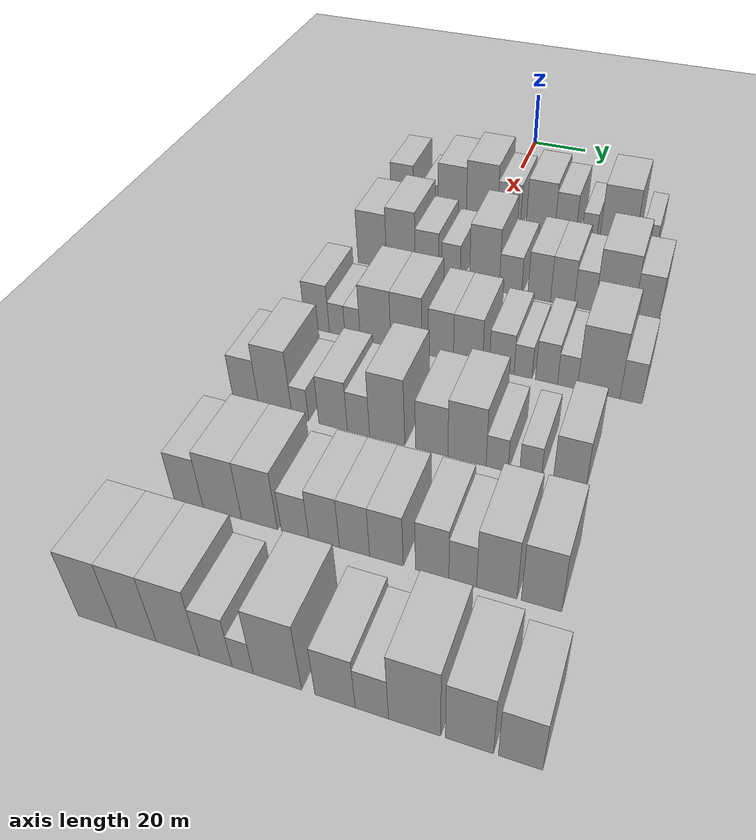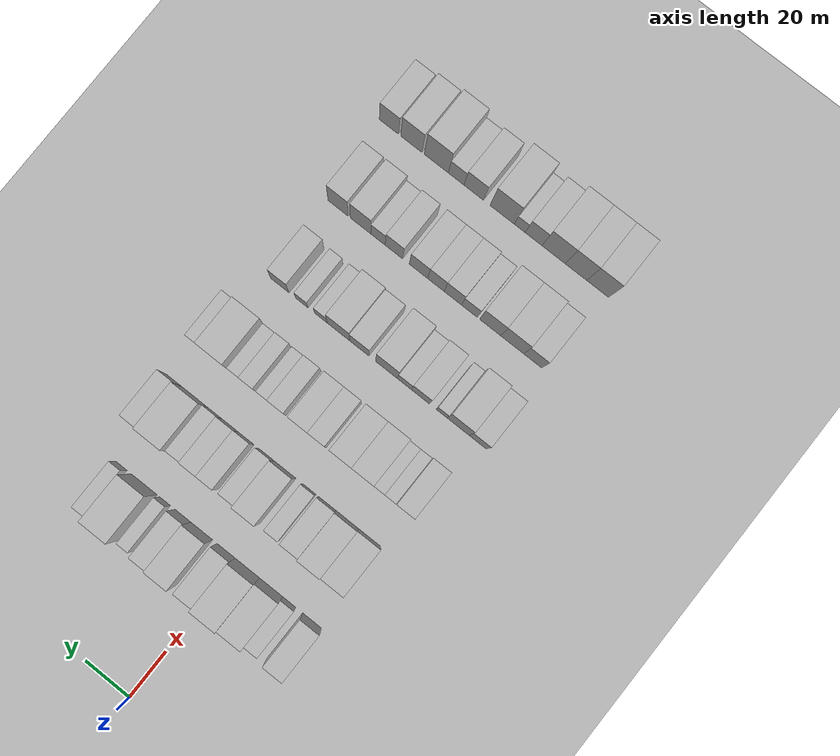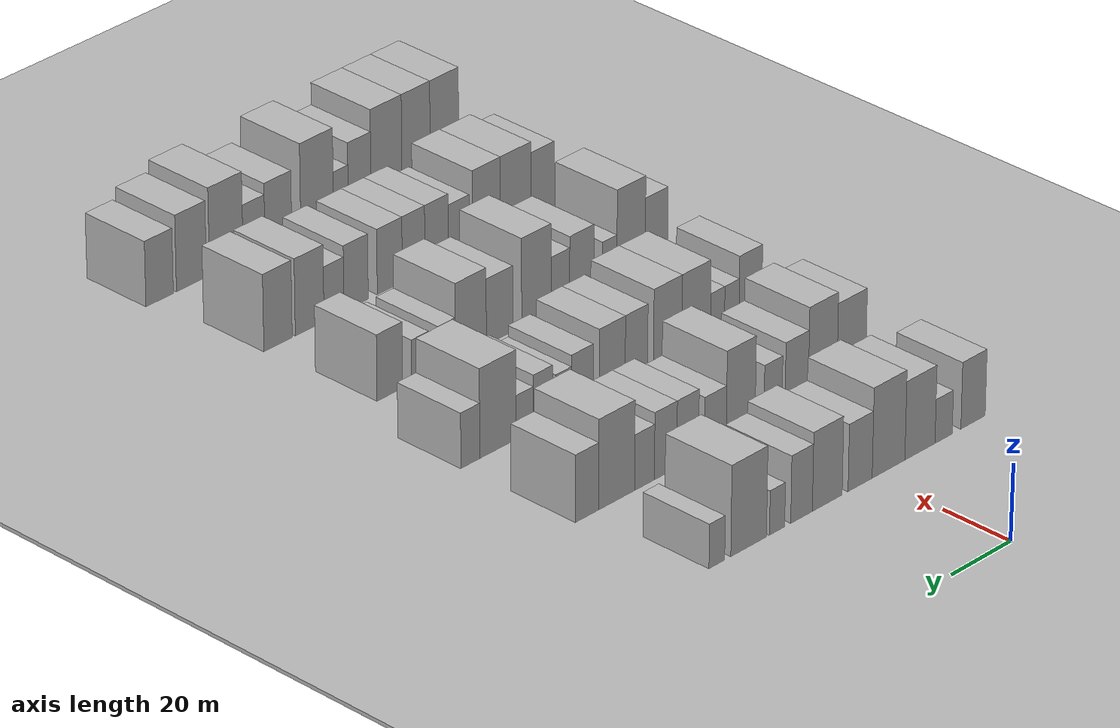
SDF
<sdf version="1.6">
 <world name="default">
  <include><name>ground_plane_1</name><uri>model://HANNAS_ground_plane</uri></include>
  <include>
   <name>ground_plane_2</name>
   <uri>model://HANNAS_ground_plane</uri>
   <pose>100 0 0  0 0 0</pose>
  </include>
  <model name="building_50">
   <static>1</static>
   <pose>50.0000 -33.1068 0 0.000000 0.000000 0.000000</pose>
   <link name="link">
    <pose>0 0 9.00 0 0 0</pose>
    <collision name="collision"><geometry><box><size>20.0000 8.4197 18.0000</size></box></geometry></collision>
    <visual name="visual">
     <cast_shadows>0</cast_shadows>
     <geometry><box><size>20.0000 8.4197 18.0000</size></box></geometry>
     <material>
      <script>
       <uri>model://HANNAS_wall/materials/scripts</uri>
       <uri>model://HANNAS_wall/materials/textures</uri>
       <name>vrc/HANNAS_wall</name>
      </script>
     </material>
    </visual>
   </link>
  </model>
  <model name="building_51">
   <static>1</static>
   <pose>50.0000 -22.9282 0 0.000000 0.000000 0.000000</pose>
   <link name="link">
    <pose>0 0 6.00 0 0 0</pose>
    <collision name="collision"><geometry><box><size>20.0000 5.9374 12.0000</size></box></geometry></collision>
    <visual name="visual">
     <cast_shadows>0</cast_shadows>
     <geometry><box><size>20.0000 5.9374 12.0000</size></box></geometry>
     <material>
      <script>
       <uri>model://HANNAS_wall/materials/scripts</uri>
       <uri>model://HANNAS_wall/materials/textures</uri>
       <name>vrc/HANNAS_wall</name>
      </script>
     </material>
    </visual>
   </link>
  </model>
  <model name="building_52">
   <static>1</static>
   <pose>50.0000 -14.8010 0 0.000000 0.000000 0.000000</pose>
   <link name="link">
    <pose>0 0 10.50 0 0 0</pose>
    <collision name="collision"><geometry><box><size>20.0000 10.3171 21.0000</size></box></geometry></collision>
    <visual name="visual">
     <cast_shadows>0</cast_shadows>
     <geometry><box><size>20.0000 10.3171 21.0000</size></box></geometry>
     <material>
      <script>
       <uri>model://HANNAS_wall/materials/scripts</uri>
       <uri>model://HANNAS_wall/materials/textures</uri>
       <name>vrc/HANNAS_wall</name>
      </script>
     </material>
    </visual>
   </link>
  </model>
  <model name="building_53">
   <static>1</static>
   <pose>50.0000 -4.0733 0 0.000000 0.000000 0.000000</pose>
   <link name="link">
    <pose>0 0 12.00 0 0 0</pose>
    <collision name="collision"><geometry><box><size>20.0000 11.1382 24.0000</size></box></geometry></collision>
    <visual name="visual">
     <cast_shadows>0</cast_shadows>
     <geometry><box><size>20.0000 11.1382 24.0000</size></box></geometry>
     <material>
      <script>
       <uri>model://HANNAS_wall/materials/scripts</uri>
       <uri>model://HANNAS_wall/materials/textures</uri>
       <name>vrc/HANNAS_wall</name>
      </script>
     </material>
    </visual>
   </link>
  </model>
  <model name="building_54">
   <static>1</static>
   <pose>50.0000 5.5672 0 0.000000 0.000000 0.000000</pose>
   <link name="link">
    <pose>0 0 9.00 0 0 0</pose>
    <collision name="collision"><geometry><box><size>20.0000 8.1429 18.0000</size></box></geometry></collision>
    <visual name="visual">
     <cast_shadows>0</cast_shadows>
     <geometry><box><size>20.0000 8.1429 18.0000</size></box></geometry>
     <material>
      <script>
       <uri>model://HANNAS_wall/materials/scripts</uri>
       <uri>model://HANNAS_wall/materials/textures</uri>
       <name>vrc/HANNAS_wall</name>
      </script>
     </material>
    </visual>
   </link>
  </model>
  <model name="building_55">
   <static>1</static>
   <pose>50.0000 16.6256 0 0.000000 0.000000 0.000000</pose>
   <link name="link">
    <pose>0 0 10.50 0 0 0</pose>
    <collision name="collision"><geometry><box><size>20.0000 9.9738 21.0000</size></box></geometry></collision>
    <visual name="visual">
     <cast_shadows>0</cast_shadows>
     <geometry><box><size>20.0000 9.9738 21.0000</size></box></geometry>
     <material>
      <script>
       <uri>model://HANNAS_wall/materials/scripts</uri>
       <uri>model://HANNAS_wall/materials/textures</uri>
       <name>vrc/HANNAS_wall</name>
      </script>
     </material>
    </visual>
   </link>
  </model>
  <model name="building_56">
   <static>1</static>
   <pose>50.0000 25.2198 0 0.000000 0.000000 0.000000</pose>
   <link name="link">
    <pose>0 0 9.00 0 0 0</pose>
    <collision name="collision"><geometry><box><size>20.0000 7.2147 18.0000</size></box></geometry></collision>
    <visual name="visual">
     <cast_shadows>0</cast_shadows>
     <geometry><box><size>20.0000 7.2147 18.0000</size></box></geometry>
     <material>
      <script>
       <uri>model://HANNAS_wall/materials/scripts</uri>
       <uri>model://HANNAS_wall/materials/textures</uri>
       <name>vrc/HANNAS_wall</name>
      </script>
     </material>
    </visual>
   </link>
  </model>
  <model name="building_57">
   <static>1</static>
   <pose>50.0000 33.3422 0 0.000000 0.000000 0.000000</pose>
   <link name="link">
    <pose>0 0 6.00 0 0 0</pose>
    <collision name="collision"><geometry><box><size>20.0000 5.0302 12.0000</size></box></geometry></collision>
    <visual name="visual">
     <cast_shadows>0</cast_shadows>
     <geometry><box><size>20.0000 5.0302 12.0000</size></box></geometry>
     <material>
      <script>
       <uri>model://HANNAS_wall/materials/scripts</uri>
       <uri>model://HANNAS_wall/materials/textures</uri>
       <name>vrc/HANNAS_wall</name>
      </script>
     </material>
    </visual>
   </link>
  </model>
  <model name="building_58">
   <static>1</static>
   <pose>50.0000 42.7394 0 0.000000 0.000000 0.000000</pose>
   <link name="link">
    <pose>0 0 12.00 0 0 0</pose>
    <collision name="collision"><geometry><box><size>20.0000 11.7641 24.0000</size></box></geometry></collision>
    <visual name="visual">
     <cast_shadows>0</cast_shadows>
     <geometry><box><size>20.0000 11.7641 24.0000</size></box></geometry>
     <material>
      <script>
       <uri>model://HANNAS_wall/materials/scripts</uri>
       <uri>model://HANNAS_wall/materials/textures</uri>
       <name>vrc/HANNAS_wall</name>
      </script>
     </material>
    </visual>
   </link>
  </model>
  <model name="building_59">
   <static>1</static>
   <pose>50.0000 53.1922 0 0.000000 0.000000 0.000000</pose>
   <link name="link">
    <pose>0 0 6.00 0 0 0</pose>
    <collision name="collision"><geometry><box><size>20.0000 5.1414 12.0000</size></box></geometry></collision>
    <visual name="visual">
     <cast_shadows>0</cast_shadows>
     <geometry><box><size>20.0000 5.1414 12.0000</size></box></geometry>
     <material>
      <script>
       <uri>model://HANNAS_wall/materials/scripts</uri>
       <uri>model://HANNAS_wall/materials/textures</uri>
       <name>vrc/HANNAS_wall</name>
      </script>
     </material>
    </visual>
   </link>
  </model>
  <model name="building_175">
   <static>1</static>
   <pose>85.0000 -30.6315 0 0.000000 0.000000 0.000000</pose>
   <link name="link">
    <pose>0 0 10.50 0 0 0</pose>
    <collision name="collision"><geometry><box><size>20.0000 9.9771 21.0000</size></box></geometry></collision>
    <visual name="visual">
     <cast_shadows>0</cast_shadows>
     <geometry><box><size>20.0000 9.9771 21.0000</size></box></geometry>
     <material>
      <script>
       <uri>model://HANNAS_wall/materials/scripts</uri>
       <uri>model://HANNAS_wall/materials/textures</uri>
       <name>vrc/HANNAS_wall</name>
      </script>
     </material>
    </visual>
   </link>
  </model>
  <model name="building_176">
   <static>1</static>
   <pose>85.0000 -20.7263 0 0.000000 0.000000 0.000000</pose>
   <link name="link">
    <pose>0 0 12.00 0 0 0</pose>
    <collision name="collision"><geometry><box><size>20.0000 9.8332 24.0000</size></box></geometry></collision>
    <visual name="visual">
     <cast_shadows>0</cast_shadows>
     <geometry><box><size>20.0000 9.8332 24.0000</size></box></geometry>
     <material>
      <script>
       <uri>model://HANNAS_wall/materials/scripts</uri>
       <uri>model://HANNAS_wall/materials/textures</uri>
       <name>vrc/HANNAS_wall</name>
      </script>
     </material>
    </visual>
   </link>
  </model>
  <model name="building_177">
   <static>1</static>
   <pose>85.0000 -11.8344 0 0.000000 0.000000 0.000000</pose>
   <link name="link">
    <pose>0 0 9.00 0 0 0</pose>
    <collision name="collision"><geometry><box><size>20.0000 7.9506 18.0000</size></box></geometry></collision>
    <visual name="visual">
     <cast_shadows>0</cast_shadows>
     <geometry><box><size>20.0000 7.9506 18.0000</size></box></geometry>
     <material>
      <script>
       <uri>model://HANNAS_wall/materials/scripts</uri>
       <uri>model://HANNAS_wall/materials/textures</uri>
       <name>vrc/HANNAS_wall</name>
      </script>
     </material>
    </visual>
   </link>
  </model>
  <model name="building_178">
   <static>1</static>
   <pose>85.0000 -3.7967 0 0.000000 0.000000 0.000000</pose>
   <link name="link">
    <pose>0 0 7.50 0 0 0</pose>
    <collision name="collision"><geometry><box><size>20.0000 6.1247 15.0000</size></box></geometry></collision>
    <visual name="visual">
     <cast_shadows>0</cast_shadows>
     <geometry><box><size>20.0000 6.1247 15.0000</size></box></geometry>
     <material>
      <script>
       <uri>model://HANNAS_wall/materials/scripts</uri>
       <uri>model://HANNAS_wall/materials/textures</uri>
       <name>vrc/HANNAS_wall</name>
      </script>
     </material>
    </visual>
   </link>
  </model>
  <model name="building_179">
   <static>1</static>
   <pose>85.0000 7.1411 0 0.000000 0.000000 0.000000</pose>
   <link name="link">
    <pose>0 0 12.00 0 0 0</pose>
    <collision name="collision"><geometry><box><size>20.0000 9.7510 24.0000</size></box></geometry></collision>
    <visual name="visual">
     <cast_shadows>0</cast_shadows>
     <geometry><box><size>20.0000 9.7510 24.0000</size></box></geometry>
     <material>
      <script>
       <uri>model://HANNAS_wall/materials/scripts</uri>
       <uri>model://HANNAS_wall/materials/textures</uri>
       <name>vrc/HANNAS_wall</name>
      </script>
     </material>
    </visual>
   </link>
  </model>
  <model name="building_180">
   <static>1</static>
   <pose>85.0000 15.6323 0 0.000000 0.000000 0.000000</pose>
   <link name="link">
    <pose>0 0 7.50 0 0 0</pose>
    <collision name="collision"><geometry><box><size>20.0000 7.2314 15.0000</size></box></geometry></collision>
    <visual name="visual">
     <cast_shadows>0</cast_shadows>
     <geometry><box><size>20.0000 7.2314 15.0000</size></box></geometry>
     <material>
      <script>
       <uri>model://HANNAS_wall/materials/scripts</uri>
       <uri>model://HANNAS_wall/materials/textures</uri>
       <name>vrc/HANNAS_wall</name>
      </script>
     </material>
    </visual>
   </link>
  </model>
  <model name="building_181">
   <static>1</static>
   <pose>85.0000 24.8751 0 0.000000 0.000000 0.000000</pose>
   <link name="link">
    <pose>0 0 9.00 0 0 0</pose>
    <collision name="collision"><geometry><box><size>20.0000 7.2543 18.0000</size></box></geometry></collision>
    <visual name="visual">
     <cast_shadows>0</cast_shadows>
     <geometry><box><size>20.0000 7.2543 18.0000</size></box></geometry>
     <material>
      <script>
       <uri>model://HANNAS_wall/materials/scripts</uri>
       <uri>model://HANNAS_wall/materials/textures</uri>
       <name>vrc/HANNAS_wall</name>
      </script>
     </material>
    </visual>
   </link>
  </model>
  <model name="building_182">
   <static>1</static>
   <pose>85.0000 32.2089 0 0.000000 0.000000 0.000000</pose>
   <link name="link">
    <pose>0 0 9.00 0 0 0</pose>
    <collision name="collision"><geometry><box><size>20.0000 7.4133 18.0000</size></box></geometry></collision>
    <visual name="visual">
     <cast_shadows>0</cast_shadows>
     <geometry><box><size>20.0000 7.4133 18.0000</size></box></geometry>
     <material>
      <script>
       <uri>model://HANNAS_wall/materials/scripts</uri>
       <uri>model://HANNAS_wall/materials/textures</uri>
       <name>vrc/HANNAS_wall</name>
      </script>
     </material>
    </visual>
   </link>
  </model>
  <model name="building_183">
   <static>1</static>
   <pose>85.0000 39.1697 0 0.000000 0.000000 0.000000</pose>
   <link name="link">
    <pose>0 0 7.50 0 0 0</pose>
    <collision name="collision"><geometry><box><size>20.0000 6.5083 15.0000</size></box></geometry></collision>
    <visual name="visual">
     <cast_shadows>0</cast_shadows>
     <geometry><box><size>20.0000 6.5083 15.0000</size></box></geometry>
     <material>
      <script>
       <uri>model://HANNAS_wall/materials/scripts</uri>
       <uri>model://HANNAS_wall/materials/textures</uri>
       <name>vrc/HANNAS_wall</name>
      </script>
     </material>
    </visual>
   </link>
  </model>
  <model name="building_184">
   <static>1</static>
   <pose>85.0000 48.3193 0 0.000000 0.000000 0.000000</pose>
   <link name="link">
    <pose>0 0 12.00 0 0 0</pose>
    <collision name="collision"><geometry><box><size>20.0000 11.7910 24.0000</size></box></geometry></collision>
    <visual name="visual">
     <cast_shadows>0</cast_shadows>
     <geometry><box><size>20.0000 11.7910 24.0000</size></box></geometry>
     <material>
      <script>
       <uri>model://HANNAS_wall/materials/scripts</uri>
       <uri>model://HANNAS_wall/materials/textures</uri>
       <name>vrc/HANNAS_wall</name>
      </script>
     </material>
    </visual>
   </link>
  </model>
  <model name="building_185">
   <static>1</static>
   <pose>85.0000 57.9907 0 0.000000 0.000000 0.000000</pose>
   <link name="link">
    <pose>0 0 9.00 0 0 0</pose>
    <collision name="collision"><geometry><box><size>20.0000 7.5517 18.0000</size></box></geometry></collision>
    <visual name="visual">
     <cast_shadows>0</cast_shadows>
     <geometry><box><size>20.0000 7.5517 18.0000</size></box></geometry>
     <material>
      <script>
       <uri>model://HANNAS_wall/materials/scripts</uri>
       <uri>model://HANNAS_wall/materials/textures</uri>
       <name>vrc/HANNAS_wall</name>
      </script>
     </material>
    </visual>
   </link>
  </model>
  <model name="building_298">
   <static>1</static>
   <pose>120.0000 -34.4571 0 0.000000 0.000000 0.000000</pose>
   <link name="link">
    <pose>0 0 9.00 0 0 0</pose>
    <collision name="collision"><geometry><box><size>20.0000 7.8726 18.0000</size></box></geometry></collision>
    <visual name="visual">
     <cast_shadows>0</cast_shadows>
     <geometry><box><size>20.0000 7.8726 18.0000</size></box></geometry>
     <material>
      <script>
       <uri>model://HANNAS_wall/materials/scripts</uri>
       <uri>model://HANNAS_wall/materials/textures</uri>
       <name>vrc/HANNAS_wall</name>
      </script>
     </material>
    </visual>
   </link>
  </model>
  <model name="building_299">
   <static>1</static>
   <pose>120.0000 -28.0157 0 0.000000 0.000000 0.000000</pose>
   <link name="link">
    <pose>0 0 6.00 0 0 0</pose>
    <collision name="collision"><geometry><box><size>20.0000 5.0102 12.0000</size></box></geometry></collision>
    <visual name="visual">
     <cast_shadows>0</cast_shadows>
     <geometry><box><size>20.0000 5.0102 12.0000</size></box></geometry>
     <material>
      <script>
       <uri>model://HANNAS_wall/materials/scripts</uri>
       <uri>model://HANNAS_wall/materials/textures</uri>
       <name>vrc/HANNAS_wall</name>
      </script>
     </material>
    </visual>
   </link>
  </model>
  <model name="building_300">
   <static>1</static>
   <pose>120.0000 -23.0753 0 0.000000 0.000000 0.000000</pose>
   <link name="link">
    <pose>0 0 6.00 0 0 0</pose>
    <collision name="collision"><geometry><box><size>20.0000 4.8705 12.0000</size></box></geometry></collision>
    <visual name="visual">
     <cast_shadows>0</cast_shadows>
     <geometry><box><size>20.0000 4.8705 12.0000</size></box></geometry>
     <material>
      <script>
       <uri>model://HANNAS_wall/materials/scripts</uri>
       <uri>model://HANNAS_wall/materials/textures</uri>
       <name>vrc/HANNAS_wall</name>
      </script>
     </material>
    </visual>
   </link>
  </model>
  <model name="building_301">
   <static>1</static>
   <pose>120.0000 -15.7947 0 0.000000 0.000000 0.000000</pose>
   <link name="link">
    <pose>0 0 10.50 0 0 0</pose>
    <collision name="collision"><geometry><box><size>20.0000 9.6907 21.0000</size></box></geometry></collision>
    <visual name="visual">
     <cast_shadows>0</cast_shadows>
     <geometry><box><size>20.0000 9.6907 21.0000</size></box></geometry>
     <material>
      <script>
       <uri>model://HANNAS_wall/materials/scripts</uri>
       <uri>model://HANNAS_wall/materials/textures</uri>
       <name>vrc/HANNAS_wall</name>
      </script>
     </material>
    </visual>
   </link>
  </model>
  <model name="building_302">
   <static>1</static>
   <pose>120.0000 -6.1326 0 0.000000 0.000000 0.000000</pose>
   <link name="link">
    <pose>0 0 10.50 0 0 0</pose>
    <collision name="collision"><geometry><box><size>20.0000 9.6334 21.0000</size></box></geometry></collision>
    <visual name="visual">
     <cast_shadows>0</cast_shadows>
     <geometry><box><size>20.0000 9.6334 21.0000</size></box></geometry>
     <material>
      <script>
       <uri>model://HANNAS_wall/materials/scripts</uri>
       <uri>model://HANNAS_wall/materials/textures</uri>
       <name>vrc/HANNAS_wall</name>
      </script>
     </material>
    </visual>
   </link>
  </model>
  <model name="building_303">
   <static>1</static>
   <pose>120.0000 4.4628 0 0.000000 0.000000 0.000000</pose>
   <link name="link">
    <pose>0 0 9.00 0 0 0</pose>
    <collision name="collision"><geometry><box><size>20.0000 7.5576 18.0000</size></box></geometry></collision>
    <visual name="visual">
     <cast_shadows>0</cast_shadows>
     <geometry><box><size>20.0000 7.5576 18.0000</size></box></geometry>
     <material>
      <script>
       <uri>model://HANNAS_wall/materials/scripts</uri>
       <uri>model://HANNAS_wall/materials/textures</uri>
       <name>vrc/HANNAS_wall</name>
      </script>
     </material>
    </visual>
   </link>
  </model>
  <model name="building_304">
   <static>1</static>
   <pose>120.0000 12.6058 0 0.000000 0.000000 0.000000</pose>
   <link name="link">
    <pose>0 0 9.00 0 0 0</pose>
    <collision name="collision"><geometry><box><size>20.0000 8.7283 18.0000</size></box></geometry></collision>
    <visual name="visual">
     <cast_shadows>0</cast_shadows>
     <geometry><box><size>20.0000 8.7283 18.0000</size></box></geometry>
     <material>
      <script>
       <uri>model://HANNAS_wall/materials/scripts</uri>
       <uri>model://HANNAS_wall/materials/textures</uri>
       <name>vrc/HANNAS_wall</name>
      </script>
     </material>
    </visual>
   </link>
  </model>
  <model name="building_305">
   <static>1</static>
   <pose>120.0000 22.6067 0 0.000000 0.000000 0.000000</pose>
   <link name="link">
    <pose>0 0 7.50 0 0 0</pose>
    <collision name="collision"><geometry><box><size>20.0000 7.2736 15.0000</size></box></geometry></collision>
    <visual name="visual">
     <cast_shadows>0</cast_shadows>
     <geometry><box><size>20.0000 7.2736 15.0000</size></box></geometry>
     <material>
      <script>
       <uri>model://HANNAS_wall/materials/scripts</uri>
       <uri>model://HANNAS_wall/materials/textures</uri>
       <name>vrc/HANNAS_wall</name>
      </script>
     </material>
    </visual>
   </link>
  </model>
  <model name="building_306">
   <static>1</static>
   <pose>120.0000 28.8604 0 0.000000 0.000000 0.000000</pose>
   <link name="link">
    <pose>0 0 6.00 0 0 0</pose>
    <collision name="collision"><geometry><box><size>20.0000 5.2337 12.0000</size></box></geometry></collision>
    <visual name="visual">
     <cast_shadows>0</cast_shadows>
     <geometry><box><size>20.0000 5.2337 12.0000</size></box></geometry>
     <material>
      <script>
       <uri>model://HANNAS_wall/materials/scripts</uri>
       <uri>model://HANNAS_wall/materials/textures</uri>
       <name>vrc/HANNAS_wall</name>
      </script>
     </material>
    </visual>
   </link>
  </model>
  <model name="building_307">
   <static>1</static>
   <pose>120.0000 35.6382 0 0.000000 0.000000 0.000000</pose>
   <link name="link">
    <pose>0 0 7.50 0 0 0</pose>
    <collision name="collision"><geometry><box><size>20.0000 6.3218 15.0000</size></box></geometry></collision>
    <visual name="visual">
     <cast_shadows>0</cast_shadows>
     <geometry><box><size>20.0000 6.3218 15.0000</size></box></geometry>
     <material>
      <script>
       <uri>model://HANNAS_wall/materials/scripts</uri>
       <uri>model://HANNAS_wall/materials/textures</uri>
       <name>vrc/HANNAS_wall</name>
      </script>
     </material>
    </visual>
   </link>
  </model>
  <model name="building_308">
   <static>1</static>
   <pose>120.0000 41.6207 0 0.000000 0.000000 0.000000</pose>
   <link name="link">
    <pose>0 0 6.00 0 0 0</pose>
    <collision name="collision"><geometry><box><size>20.0000 5.6432 12.0000</size></box></geometry></collision>
    <visual name="visual">
     <cast_shadows>0</cast_shadows>
     <geometry><box><size>20.0000 5.6432 12.0000</size></box></geometry>
     <material>
      <script>
       <uri>model://HANNAS_wall/materials/scripts</uri>
       <uri>model://HANNAS_wall/materials/textures</uri>
       <name>vrc/HANNAS_wall</name>
      </script>
     </material>
    </visual>
   </link>
  </model>
  <model name="building_309">
   <static>1</static>
   <pose>120.0000 50.4083 0 0.000000 0.000000 0.000000</pose>
   <link name="link">
    <pose>0 0 12.00 0 0 0</pose>
    <collision name="collision"><geometry><box><size>20.0000 11.9320 24.0000</size></box></geometry></collision>
    <visual name="visual">
     <cast_shadows>0</cast_shadows>
     <geometry><box><size>20.0000 11.9320 24.0000</size></box></geometry>
     <material>
      <script>
       <uri>model://HANNAS_wall/materials/scripts</uri>
       <uri>model://HANNAS_wall/materials/textures</uri>
       <name>vrc/HANNAS_wall</name>
      </script>
     </material>
    </visual>
   </link>
  </model>
  <model name="building_310">
   <static>1</static>
   <pose>120.0000 59.4327 0 0.000000 0.000000 0.000000</pose>
   <link name="link">
    <pose>0 0 7.50 0 0 0</pose>
    <collision name="collision"><geometry><box><size>20.0000 6.1167 15.0000</size></box></geometry></collision>
    <visual name="visual">
     <cast_shadows>0</cast_shadows>
     <geometry><box><size>20.0000 6.1167 15.0000</size></box></geometry>
     <material>
      <script>
       <uri>model://HANNAS_wall/materials/scripts</uri>
       <uri>model://HANNAS_wall/materials/textures</uri>
       <name>vrc/HANNAS_wall</name>
      </script>
     </material>
    </visual>
   </link>
  </model>
  <model name="building_422">
   <static>1</static>
   <pose>155.0000 -39.8527 0 0.000000 0.000000 0.000000</pose>
   <link name="link">
    <pose>0 0 9.00 0 0 0</pose>
    <collision name="collision"><geometry><box><size>20.0000 7.7414 18.0000</size></box></geometry></collision>
    <visual name="visual">
     <cast_shadows>0</cast_shadows>
     <geometry><box><size>20.0000 7.7414 18.0000</size></box></geometry>
     <material>
      <script>
       <uri>model://HANNAS_wall/materials/scripts</uri>
       <uri>model://HANNAS_wall/materials/textures</uri>
       <name>vrc/HANNAS_wall</name>
      </script>
     </material>
    </visual>
   </link>
  </model>
  <model name="building_423">
   <static>1</static>
   <pose>155.0000 -31.0823 0 0.000000 0.000000 0.000000</pose>
   <link name="link">
    <pose>0 0 12.00 0 0 0</pose>
    <collision name="collision"><geometry><box><size>20.0000 9.7992 24.0000</size></box></geometry></collision>
    <visual name="visual">
     <cast_shadows>0</cast_shadows>
     <geometry><box><size>20.0000 9.7992 24.0000</size></box></geometry>
     <material>
      <script>
       <uri>model://HANNAS_wall/materials/scripts</uri>
       <uri>model://HANNAS_wall/materials/textures</uri>
       <name>vrc/HANNAS_wall</name>
      </script>
     </material>
    </visual>
   </link>
  </model>
  <model name="building_424">
   <static>1</static>
   <pose>155.0000 -23.7386 0 0.000000 0.000000 0.000000</pose>
   <link name="link">
    <pose>0 0 6.00 0 0 0</pose>
    <collision name="collision"><geometry><box><size>20.0000 4.8882 12.0000</size></box></geometry></collision>
    <visual name="visual">
     <cast_shadows>0</cast_shadows>
     <geometry><box><size>20.0000 4.8882 12.0000</size></box></geometry>
     <material>
      <script>
       <uri>model://HANNAS_wall/materials/scripts</uri>
       <uri>model://HANNAS_wall/materials/textures</uri>
       <name>vrc/HANNAS_wall</name>
      </script>
     </material>
    </visual>
   </link>
  </model>
  <model name="building_425">
   <static>1</static>
   <pose>155.0000 -14.1701 0 0.000000 0.000000 0.000000</pose>
   <link name="link">
    <pose>0 0 9.00 0 0 0</pose>
    <collision name="collision"><geometry><box><size>20.0000 8.2486 18.0000</size></box></geometry></collision>
    <visual name="visual">
     <cast_shadows>0</cast_shadows>
     <geometry><box><size>20.0000 8.2486 18.0000</size></box></geometry>
     <material>
      <script>
       <uri>model://HANNAS_wall/materials/scripts</uri>
       <uri>model://HANNAS_wall/materials/textures</uri>
       <name>vrc/HANNAS_wall</name>
      </script>
     </material>
    </visual>
   </link>
  </model>
  <model name="building_426">
   <static>1</static>
   <pose>155.0000 -6.8807 0 0.000000 0.000000 0.000000</pose>
   <link name="link">
    <pose>0 0 7.50 0 0 0</pose>
    <collision name="collision"><geometry><box><size>20.0000 6.3303 15.0000</size></box></geometry></collision>
    <visual name="visual">
     <cast_shadows>0</cast_shadows>
     <geometry><box><size>20.0000 6.3303 15.0000</size></box></geometry>
     <material>
      <script>
       <uri>model://HANNAS_wall/materials/scripts</uri>
       <uri>model://HANNAS_wall/materials/textures</uri>
       <name>vrc/HANNAS_wall</name>
      </script>
     </material>
    </visual>
   </link>
  </model>
  <model name="building_427">
   <static>1</static>
   <pose>155.0000 1.2386 0 0.000000 0.000000 0.000000</pose>
   <link name="link">
    <pose>0 0 12.00 0 0 0</pose>
    <collision name="collision"><geometry><box><size>20.0000 9.9083 24.0000</size></box></geometry></collision>
    <visual name="visual">
     <cast_shadows>0</cast_shadows>
     <geometry><box><size>20.0000 9.9083 24.0000</size></box></geometry>
     <material>
      <script>
       <uri>model://HANNAS_wall/materials/scripts</uri>
       <uri>model://HANNAS_wall/materials/textures</uri>
       <name>vrc/HANNAS_wall</name>
      </script>
     </material>
    </visual>
   </link>
  </model>
  <model name="building_428">
   <static>1</static>
   <pose>155.0000 13.6049 0 0.000000 0.000000 0.000000</pose>
   <link name="link">
    <pose>0 0 9.00 0 0 0</pose>
    <collision name="collision"><geometry><box><size>20.0000 8.8243 18.0000</size></box></geometry></collision>
    <visual name="visual">
     <cast_shadows>0</cast_shadows>
     <geometry><box><size>20.0000 8.8243 18.0000</size></box></geometry>
     <material>
      <script>
       <uri>model://HANNAS_wall/materials/scripts</uri>
       <uri>model://HANNAS_wall/materials/textures</uri>
       <name>vrc/HANNAS_wall</name>
      </script>
     </material>
    </visual>
   </link>
  </model>
  <model name="building_429">
   <static>1</static>
   <pose>155.0000 23.1366 0 0.000000 0.000000 0.000000</pose>
   <link name="link">
    <pose>0 0 10.50 0 0 0</pose>
    <collision name="collision"><geometry><box><size>20.0000 10.2390 21.0000</size></box></geometry></collision>
    <visual name="visual">
     <cast_shadows>0</cast_shadows>
     <geometry><box><size>20.0000 10.2390 21.0000</size></box></geometry>
     <material>
      <script>
       <uri>model://HANNAS_wall/materials/scripts</uri>
       <uri>model://HANNAS_wall/materials/textures</uri>
       <name>vrc/HANNAS_wall</name>
      </script>
     </material>
    </visual>
   </link>
  </model>
  <model name="building_430">
   <static>1</static>
   <pose>155.0000 31.1535 0 0.000000 0.000000 0.000000</pose>
   <link name="link">
    <pose>0 0 6.00 0 0 0</pose>
    <collision name="collision"><geometry><box><size>20.0000 5.7948 12.0000</size></box></geometry></collision>
    <visual name="visual">
     <cast_shadows>0</cast_shadows>
     <geometry><box><size>20.0000 5.7948 12.0000</size></box></geometry>
     <material>
      <script>
       <uri>model://HANNAS_wall/materials/scripts</uri>
       <uri>model://HANNAS_wall/materials/textures</uri>
       <name>vrc/HANNAS_wall</name>
      </script>
     </material>
    </visual>
   </link>
  </model>
  <model name="building_431">
   <static>1</static>
   <pose>155.0000 39.8757 0 0.000000 0.000000 0.000000</pose>
   <link name="link">
    <pose>0 0 6.00 0 0 0</pose>
    <collision name="collision"><geometry><box><size>20.0000 5.6496 12.0000</size></box></geometry></collision>
    <visual name="visual">
     <cast_shadows>0</cast_shadows>
     <geometry><box><size>20.0000 5.6496 12.0000</size></box></geometry>
     <material>
      <script>
       <uri>model://HANNAS_wall/materials/scripts</uri>
       <uri>model://HANNAS_wall/materials/textures</uri>
       <name>vrc/HANNAS_wall</name>
      </script>
     </material>
    </visual>
   </link>
  </model>
  <model name="building_432">
   <static>1</static>
   <pose>155.0000 49.8714 0 0.000000 0.000000 0.000000</pose>
   <link name="link">
    <pose>0 0 9.00 0 0 0</pose>
    <collision name="collision"><geometry><box><size>20.0000 8.3418 18.0000</size></box></geometry></collision>
    <visual name="visual">
     <cast_shadows>0</cast_shadows>
     <geometry><box><size>20.0000 8.3418 18.0000</size></box></geometry>
     <material>
      <script>
       <uri>model://HANNAS_wall/materials/scripts</uri>
       <uri>model://HANNAS_wall/materials/textures</uri>
       <name>vrc/HANNAS_wall</name>
      </script>
     </material>
    </visual>
   </link>
  </model>
  <model name="building_546">
   <static>1</static>
   <pose>190.0000 -37.4909 0 0.000000 0.000000 0.000000</pose>
   <link name="link">
    <pose>0 0 9.00 0 0 0</pose>
    <collision name="collision"><geometry><box><size>20.0000 8.1254 18.0000</size></box></geometry></collision>
    <visual name="visual">
     <cast_shadows>0</cast_shadows>
     <geometry><box><size>20.0000 8.1254 18.0000</size></box></geometry>
     <material>
      <script>
       <uri>model://HANNAS_wall/materials/scripts</uri>
       <uri>model://HANNAS_wall/materials/textures</uri>
       <name>vrc/HANNAS_wall</name>
      </script>
     </material>
    </visual>
   </link>
  </model>
  <model name="building_547">
   <static>1</static>
   <pose>190.0000 -28.2102 0 0.000000 0.000000 0.000000</pose>
   <link name="link">
    <pose>0 0 10.50 0 0 0</pose>
    <collision name="collision"><geometry><box><size>20.0000 10.4360 21.0000</size></box></geometry></collision>
    <visual name="visual">
     <cast_shadows>0</cast_shadows>
     <geometry><box><size>20.0000 10.4360 21.0000</size></box></geometry>
     <material>
      <script>
       <uri>model://HANNAS_wall/materials/scripts</uri>
       <uri>model://HANNAS_wall/materials/textures</uri>
       <name>vrc/HANNAS_wall</name>
      </script>
     </material>
    </visual>
   </link>
  </model>
  <model name="building_548">
   <static>1</static>
   <pose>190.0000 -18.2042 0 0.000000 0.000000 0.000000</pose>
   <link name="link">
    <pose>0 0 10.50 0 0 0</pose>
    <collision name="collision"><geometry><box><size>20.0000 9.5760 21.0000</size></box></geometry></collision>
    <visual name="visual">
     <cast_shadows>0</cast_shadows>
     <geometry><box><size>20.0000 9.5760 21.0000</size></box></geometry>
     <material>
      <script>
       <uri>model://HANNAS_wall/materials/scripts</uri>
       <uri>model://HANNAS_wall/materials/textures</uri>
       <name>vrc/HANNAS_wall</name>
      </script>
     </material>
    </visual>
   </link>
  </model>
  <model name="building_549">
   <static>1</static>
   <pose>190.0000 -8.8168 0 0.000000 0.000000 0.000000</pose>
   <link name="link">
    <pose>0 0 7.50 0 0 0</pose>
    <collision name="collision"><geometry><box><size>20.0000 7.1987 15.0000</size></box></geometry></collision>
    <visual name="visual">
     <cast_shadows>0</cast_shadows>
     <geometry><box><size>20.0000 7.1987 15.0000</size></box></geometry>
     <material>
      <script>
       <uri>model://HANNAS_wall/materials/scripts</uri>
       <uri>model://HANNAS_wall/materials/textures</uri>
       <name>vrc/HANNAS_wall</name>
      </script>
     </material>
    </visual>
   </link>
  </model>
  <model name="building_550">
   <static>1</static>
   <pose>190.0000 -1.2823 0 0.000000 0.000000 0.000000</pose>
   <link name="link">
    <pose>0 0 9.00 0 0 0</pose>
    <collision name="collision"><geometry><box><size>20.0000 7.8702 18.0000</size></box></geometry></collision>
    <visual name="visual">
     <cast_shadows>0</cast_shadows>
     <geometry><box><size>20.0000 7.8702 18.0000</size></box></geometry>
     <material>
      <script>
       <uri>model://HANNAS_wall/materials/scripts</uri>
       <uri>model://HANNAS_wall/materials/textures</uri>
       <name>vrc/HANNAS_wall</name>
      </script>
     </material>
    </visual>
   </link>
  </model>
  <model name="building_551">
   <static>1</static>
   <pose>190.0000 6.4506 0 0.000000 0.000000 0.000000</pose>
   <link name="link">
    <pose>0 0 9.00 0 0 0</pose>
    <collision name="collision"><geometry><box><size>20.0000 7.5957 18.0000</size></box></geometry></collision>
    <visual name="visual">
     <cast_shadows>0</cast_shadows>
     <geometry><box><size>20.0000 7.5957 18.0000</size></box></geometry>
     <material>
      <script>
       <uri>model://HANNAS_wall/materials/scripts</uri>
       <uri>model://HANNAS_wall/materials/textures</uri>
       <name>vrc/HANNAS_wall</name>
      </script>
     </material>
    </visual>
   </link>
  </model>
  <model name="building_552">
   <static>1</static>
   <pose>190.0000 14.4327 0 0.000000 0.000000 0.000000</pose>
   <link name="link">
    <pose>0 0 9.00 0 0 0</pose>
    <collision name="collision"><geometry><box><size>20.0000 8.3684 18.0000</size></box></geometry></collision>
    <visual name="visual">
     <cast_shadows>0</cast_shadows>
     <geometry><box><size>20.0000 8.3684 18.0000</size></box></geometry>
     <material>
      <script>
       <uri>model://HANNAS_wall/materials/scripts</uri>
       <uri>model://HANNAS_wall/materials/textures</uri>
       <name>vrc/HANNAS_wall</name>
      </script>
     </material>
    </visual>
   </link>
  </model>
  <model name="building_553">
   <static>1</static>
   <pose>190.0000 25.6391 0 0.000000 0.000000 0.000000</pose>
   <link name="link">
    <pose>0 0 9.00 0 0 0</pose>
    <collision name="collision"><geometry><box><size>20.0000 8.0444 18.0000</size></box></geometry></collision>
    <visual name="visual">
     <cast_shadows>0</cast_shadows>
     <geometry><box><size>20.0000 8.0444 18.0000</size></box></geometry>
     <material>
      <script>
       <uri>model://HANNAS_wall/materials/scripts</uri>
       <uri>model://HANNAS_wall/materials/textures</uri>
       <name>vrc/HANNAS_wall</name>
      </script>
     </material>
    </visual>
   </link>
  </model>
  <model name="building_554">
   <static>1</static>
   <pose>190.0000 32.9590 0 0.000000 0.000000 0.000000</pose>
   <link name="link">
    <pose>0 0 7.50 0 0 0</pose>
    <collision name="collision"><geometry><box><size>20.0000 6.5956 15.0000</size></box></geometry></collision>
    <visual name="visual">
     <cast_shadows>0</cast_shadows>
     <geometry><box><size>20.0000 6.5956 15.0000</size></box></geometry>
     <material>
      <script>
       <uri>model://HANNAS_wall/materials/scripts</uri>
       <uri>model://HANNAS_wall/materials/textures</uri>
       <name>vrc/HANNAS_wall</name>
      </script>
     </material>
    </visual>
   </link>
  </model>
  <model name="building_555">
   <static>1</static>
   <pose>190.0000 40.9761 0 0.000000 0.000000 0.000000</pose>
   <link name="link">
    <pose>0 0 10.50 0 0 0</pose>
    <collision name="collision"><geometry><box><size>20.0000 9.4385 21.0000</size></box></geometry></collision>
    <visual name="visual">
     <cast_shadows>0</cast_shadows>
     <geometry><box><size>20.0000 9.4385 21.0000</size></box></geometry>
     <material>
      <script>
       <uri>model://HANNAS_wall/materials/scripts</uri>
       <uri>model://HANNAS_wall/materials/textures</uri>
       <name>vrc/HANNAS_wall</name>
      </script>
     </material>
    </visual>
   </link>
  </model>
  <model name="building_556">
   <static>1</static>
   <pose>190.0000 51.3159 0 0.000000 0.000000 0.000000</pose>
   <link name="link">
    <pose>0 0 10.50 0 0 0</pose>
    <collision name="collision"><geometry><box><size>20.0000 9.2412 21.0000</size></box></geometry></collision>
    <visual name="visual">
     <cast_shadows>0</cast_shadows>
     <geometry><box><size>20.0000 9.2412 21.0000</size></box></geometry>
     <material>
      <script>
       <uri>model://HANNAS_wall/materials/scripts</uri>
       <uri>model://HANNAS_wall/materials/textures</uri>
       <name>vrc/HANNAS_wall</name>
      </script>
     </material>
    </visual>
   </link>
  </model>
  <model name="building_676">
   <static>1</static>
   <pose>225.0000 -39.8108 0 0.000000 0.000000 0.000000</pose>
   <link name="link">
    <pose>0 0 12.00 0 0 0</pose>
    <collision name="collision"><geometry><box><size>20.0000 9.8475 24.0000</size></box></geometry></collision>
    <visual name="visual">
     <cast_shadows>0</cast_shadows>
     <geometry><box><size>20.0000 9.8475 24.0000</size></box></geometry>
     <material>
      <script>
       <uri>model://HANNAS_wall/materials/scripts</uri>
       <uri>model://HANNAS_wall/materials/textures</uri>
       <name>vrc/HANNAS_wall</name>
      </script>
     </material>
    </visual>
   </link>
  </model>
  <model name="building_677">
   <static>1</static>
   <pose>225.0000 -30.0164 0 0.000000 0.000000 0.000000</pose>
   <link name="link">
    <pose>0 0 12.00 0 0 0</pose>
    <collision name="collision"><geometry><box><size>20.0000 9.7413 24.0000</size></box></geometry></collision>
    <visual name="visual">
     <cast_shadows>0</cast_shadows>
     <geometry><box><size>20.0000 9.7413 24.0000</size></box></geometry>
     <material>
      <script>
       <uri>model://HANNAS_wall/materials/scripts</uri>
       <uri>model://HANNAS_wall/materials/textures</uri>
       <name>vrc/HANNAS_wall</name>
      </script>
     </material>
    </visual>
   </link>
  </model>
  <model name="building_678">
   <static>1</static>
   <pose>225.0000 -19.8713 0 0.000000 0.000000 0.000000</pose>
   <link name="link">
    <pose>0 0 12.00 0 0 0</pose>
    <collision name="collision"><geometry><box><size>20.0000 10.5489 24.0000</size></box></geometry></collision>
    <visual name="visual">
     <cast_shadows>0</cast_shadows>
     <geometry><box><size>20.0000 10.5489 24.0000</size></box></geometry>
     <material>
      <script>
       <uri>model://HANNAS_wall/materials/scripts</uri>
       <uri>model://HANNAS_wall/materials/textures</uri>
       <name>vrc/HANNAS_wall</name>
      </script>
     </material>
    </visual>
   </link>
  </model>
  <model name="building_679">
   <static>1</static>
   <pose>225.0000 -10.7327 0 0.000000 0.000000 0.000000</pose>
   <link name="link">
    <pose>0 0 9.00 0 0 0</pose>
    <collision name="collision"><geometry><box><size>20.0000 7.7283 18.0000</size></box></geometry></collision>
    <visual name="visual">
     <cast_shadows>0</cast_shadows>
     <geometry><box><size>20.0000 7.7283 18.0000</size></box></geometry>
     <material>
      <script>
       <uri>model://HANNAS_wall/materials/scripts</uri>
       <uri>model://HANNAS_wall/materials/textures</uri>
       <name>vrc/HANNAS_wall</name>
      </script>
     </material>
    </visual>
   </link>
  </model>
  <model name="building_680">
   <static>1</static>
   <pose>225.0000 -4.3869 0 0.000000 0.000000 0.000000</pose>
   <link name="link">
    <pose>0 0 6.00 0 0 0</pose>
    <collision name="collision"><geometry><box><size>20.0000 4.9633 12.0000</size></box></geometry></collision>
    <visual name="visual">
     <cast_shadows>0</cast_shadows>
     <geometry><box><size>20.0000 4.9633 12.0000</size></box></geometry>
     <material>
      <script>
       <uri>model://HANNAS_wall/materials/scripts</uri>
       <uri>model://HANNAS_wall/materials/textures</uri>
       <name>vrc/HANNAS_wall</name>
      </script>
     </material>
    </visual>
   </link>
  </model>
  <model name="building_681">
   <static>1</static>
   <pose>225.0000 3.6153 0 0.000000 0.000000 0.000000</pose>
   <link name="link">
    <pose>0 0 12.00 0 0 0</pose>
    <collision name="collision"><geometry><box><size>20.0000 11.0412 24.0000</size></box></geometry></collision>
    <visual name="visual">
     <cast_shadows>0</cast_shadows>
     <geometry><box><size>20.0000 11.0412 24.0000</size></box></geometry>
     <material>
      <script>
       <uri>model://HANNAS_wall/materials/scripts</uri>
       <uri>model://HANNAS_wall/materials/textures</uri>
       <name>vrc/HANNAS_wall</name>
      </script>
     </material>
    </visual>
   </link>
  </model>
  <model name="building_682">
   <static>1</static>
   <pose>225.0000 16.6017 0 0.000000 0.000000 0.000000</pose>
   <link name="link">
    <pose>0 0 9.00 0 0 0</pose>
    <collision name="collision"><geometry><box><size>20.0000 8.9315 18.0000</size></box></geometry></collision>
    <visual name="visual">
     <cast_shadows>0</cast_shadows>
     <geometry><box><size>20.0000 8.9315 18.0000</size></box></geometry>
     <material>
      <script>
       <uri>model://HANNAS_wall/materials/scripts</uri>
       <uri>model://HANNAS_wall/materials/textures</uri>
       <name>vrc/HANNAS_wall</name>
      </script>
     </material>
    </visual>
   </link>
  </model>
  <model name="building_683">
   <static>1</static>
   <pose>225.0000 24.6952 0 0.000000 0.000000 0.000000</pose>
   <link name="link">
    <pose>0 0 7.50 0 0 0</pose>
    <collision name="collision"><geometry><box><size>20.0000 7.2555 15.0000</size></box></geometry></collision>
    <visual name="visual">
     <cast_shadows>0</cast_shadows>
     <geometry><box><size>20.0000 7.2555 15.0000</size></box></geometry>
     <material>
      <script>
       <uri>model://HANNAS_wall/materials/scripts</uri>
       <uri>model://HANNAS_wall/materials/textures</uri>
       <name>vrc/HANNAS_wall</name>
      </script>
     </material>
    </visual>
   </link>
  </model>
  <model name="building_684">
   <static>1</static>
   <pose>225.0000 33.8536 0 0.000000 0.000000 0.000000</pose>
   <link name="link">
    <pose>0 0 12.00 0 0 0</pose>
    <collision name="collision"><geometry><box><size>20.0000 11.0614 24.0000</size></box></geometry></collision>
    <visual name="visual">
     <cast_shadows>0</cast_shadows>
     <geometry><box><size>20.0000 11.0614 24.0000</size></box></geometry>
     <material>
      <script>
       <uri>model://HANNAS_wall/materials/scripts</uri>
       <uri>model://HANNAS_wall/materials/textures</uri>
       <name>vrc/HANNAS_wall</name>
      </script>
     </material>
    </visual>
   </link>
  </model>
  <model name="building_685">
   <static>1</static>
   <pose>225.0000 45.3141 0 0.000000 0.000000 0.000000</pose>
   <link name="link">
    <pose>0 0 10.50 0 0 0</pose>
    <collision name="collision"><geometry><box><size>20.0000 9.8595 21.0000</size></box></geometry></collision>
    <visual name="visual">
     <cast_shadows>0</cast_shadows>
     <geometry><box><size>20.0000 9.8595 21.0000</size></box></geometry>
     <material>
      <script>
       <uri>model://HANNAS_wall/materials/scripts</uri>
       <uri>model://HANNAS_wall/materials/textures</uri>
       <name>vrc/HANNAS_wall</name>
      </script>
     </material>
    </visual>
   </link>
  </model>
  <model name="building_686">
   <static>1</static>
   <pose>225.0000 55.6930 0 0.000000 0.000000 0.000000</pose>
   <link name="link">
    <pose>0 0 9.00 0 0 0</pose>
    <collision name="collision"><geometry><box><size>20.0000 8.8983 18.0000</size></box></geometry></collision>
    <visual name="visual">
     <cast_shadows>0</cast_shadows>
     <geometry><box><size>20.0000 8.8983 18.0000</size></box></geometry>
     <material>
      <script>
       <uri>model://HANNAS_wall/materials/scripts</uri>
       <uri>model://HANNAS_wall/materials/textures</uri>
       <name>vrc/HANNAS_wall</name>
      </script>
     </material>
    </visual>
   </link>
  </model>
 </world>
</sdf>
